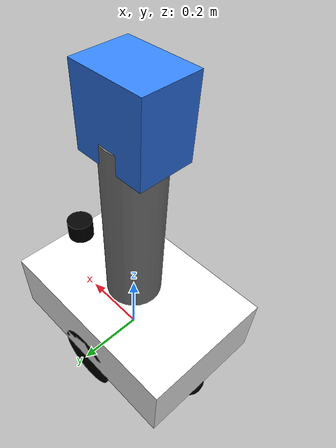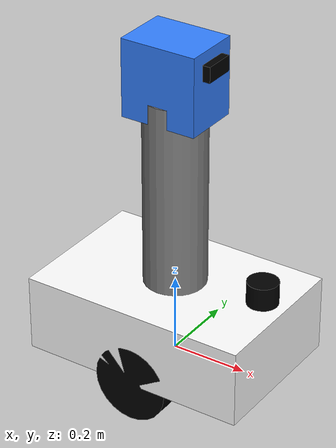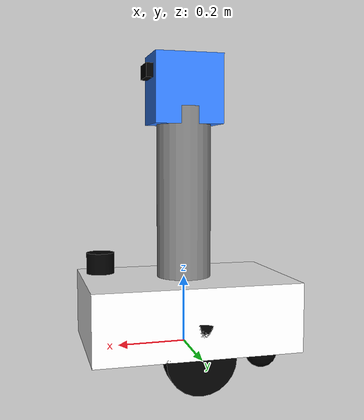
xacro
<?xml version="1.0"?>
<robot name="reception_bot" xmlns:xacro="http://www.ros.org/wiki/xacro">

  <!-- ===================== PROPERTIES ===================== -->
  <xacro:property name="base_mass"   value="5.0"/>
  <xacro:property name="base_length" value="0.6"/>
  <xacro:property name="base_width"  value="0.4"/>
  <xacro:property name="base_height" value="0.2"/>
  <xacro:property name="wheel_radius" value="0.1"/>
  <xacro:property name="wheel_width"  value="0.05"/>
  <xacro:property name="wheel_mass"   value="0.5"/>
  <xacro:property name="track_width"  value="0.35"/>
  <xacro:property name="caster_wheel_radius" value="0.05"/>

  <!-- ===================== MATERIALS ===================== -->
  <material name="white">  <color rgba="1 1 1 1"/>    </material>
  <material name="black">  <color rgba="0 0 0 1"/>    </material>
  <material name="blue">   <color rgba="0.2 0.5 1 1"/></material>
  <material name="gray">   <color rgba="0.5 0.5 0.5 1"/></material>

  <!-- ===================== MACROS ===================== -->
  <xacro:macro name="box_inertia" params="m w h d">
    <inertial>
      <mass value="${m}"/>
      <inertia ixx="${m*(h*h+d*d)/12}" ixy="0" ixz="0"
               iyy="${m*(w*w+d*d)/12}" iyz="0"
               izz="${m*(w*w+h*h)/12}"/>
    </inertial>
  </xacro:macro>

  <xacro:macro name="cylinder_inertia" params="m r h">
    <inertial>
      <mass value="${m}"/>
      <inertia ixx="${m*(3*r*r+h*h)/12}" ixy="0" ixz="0"
               iyy="${m*(3*r*r+h*h)/12}" iyz="0"
               izz="${m*r*r/2}"/>
    </inertial>
  </xacro:macro>

  <!-- ===================== BASE LINK ===================== -->
  <link name="base_footprint"/>

  <joint name="base_footprint_joint" type="fixed">
    <parent link="base_footprint"/>
    <child  link="base_link"/>
    <origin xyz="0 0 ${wheel_radius}" rpy="0 0 0"/>
  </joint>

  <link name="base_link">
    <visual>
      <geometry><box size="${base_length} ${base_width} ${base_height}"/></geometry>
      <material name="white"/>
    </visual>
    <collision>
      <geometry><box size="${base_length} ${base_width} ${base_height}"/></geometry>
    </collision>
    <xacro:box_inertia m="${base_mass}" w="${base_width}" h="${base_height}" d="${base_length}"/>
  </link>

  <!-- =================== TORSO / POLE =================== -->
  <joint name="torso_joint" type="fixed">
    <parent link="base_link"/>
    <child  link="torso_link"/>
    <origin xyz="0 0 ${base_height/2 + 0.25}" rpy="0 0 0"/>
  </joint>
  <link name="torso_link">
    <visual>
      <geometry><cylinder radius="0.08" length="0.5"/></geometry>
      <material name="gray"/>
    </visual>
    <collision>
      <geometry><cylinder radius="0.08" length="0.5"/></geometry>
    </collision>
    <xacro:cylinder_inertia m="2.0" r="0.08" h="0.5"/>
  </link>

  <!-- =================== HEAD =================== -->
  <joint name="head_joint" type="fixed">
    <parent link="torso_link"/>
    <child  link="head_link"/>
    <origin xyz="0 0 0.3" rpy="0 0 0"/>
  </joint>
  <link name="head_link">
    <visual>
      <geometry><box size="0.2 0.15 0.2"/></geometry>
      <material name="blue"/>
    </visual>
    <collision>
      <geometry><box size="0.2 0.15 0.2"/></geometry>
    </collision>
    <xacro:box_inertia m="1.0" w="0.15" h="0.2" d="0.2"/>
  </link>

  <!-- =================== WHEEL MACRO =================== -->
  <xacro:macro name="wheel" params="prefix y_offset">
    <joint name="${prefix}_wheel_joint" type="continuous">
      <parent link="base_link"/>
      <child  link="${prefix}_wheel_link"/>
      <origin xyz="0 ${y_offset} ${-base_height/2}" rpy="${-pi/2} 0 0"/>
      <axis xyz="0 0 1"/>
    </joint>
    <link name="${prefix}_wheel_link">
      <visual>
        <geometry><cylinder radius="${wheel_radius}" length="${wheel_width}"/></geometry>
        <material name="black"/>
      </visual>
      <collision>
        <geometry><cylinder radius="${wheel_radius}" length="${wheel_width}"/></geometry>
      </collision>
      <xacro:cylinder_inertia m="${wheel_mass}" r="${wheel_radius}" h="${wheel_width}"/>
    </link>
  </xacro:macro>

  <xacro:wheel prefix="left"  y_offset="${track_width/2}"/>
  <xacro:wheel prefix="right" y_offset="${-track_width/2}"/>

  <!-- =================== CASTER WHEEL =================== -->
  <link name="caster_wheel">
  <inertial>
    <origin xyz="0 0 0" rpy="0 0 0"/>
    <mass value="0.2"/>
    <inertia ixx="0.00025" ixy="0" ixz="0"
             iyy="0.00025" iyz="0"
             izz="0.00025"/>
  </inertial>
  <visual>
    <geometry>
      <sphere radius="${caster_wheel_radius}"/>
    </geometry>
    <origin xyz="0 0 0" rpy="0 0 0"/>
    <material name="black"/>
  </visual>
  <collision>
    <geometry>
      <sphere radius="${caster_wheel_radius}"/>
    </geometry>
    <origin xyz="0 0 0" rpy="0 0 0"/>
  </collision>
  </link>

  <joint name="caster_wheel_joint" type="fixed">
  <parent link="base_link"/>
  <child link="caster_wheel"/>
  <origin xyz="${(-base_length/2) + caster_wheel_radius} 0 ${-base_height/2 + caster_wheel_radius - wheel_radius}" rpy="0 0 0"/>
  </joint>
  <!-- =================== LIDAR =================== -->
  <joint name="lidar_joint" type="fixed">
    <parent link="base_link"/>
    <child  link="lidar_link"/>
    <origin xyz="${base_length/2 - 0.05} 0 ${base_height/2 + 0.05}" rpy="0 0 0"/>
  </joint>
  <link name="lidar_link">
    <visual>
      <geometry><cylinder radius="0.04" length="0.06"/></geometry>
      <material name="black"/>
    </visual>
    <collision>
      <geometry><cylinder radius="0.04" length="0.06"/></geometry>
    </collision>
    <inertial>
      <mass value="0.1"/>
      <inertia ixx="0.0001" ixy="0" ixz="0" iyy="0.0001" iyz="0" izz="0.0001"/>
    </inertial>
  </link>

  <!-- =================== CAMERA =================== -->
  <joint name="camera_joint" type="fixed">
    <parent link="head_link"/>
    <child  link="camera_link"/>
    <origin xyz="0.1 0 0.05" rpy="0 0 0"/>
  </joint>
  <link name="camera_link">
    <visual>
      <geometry><box size="0.04 0.08 0.04"/></geometry>
      <material name="black"/>
    </visual>
    <collision>
      <geometry><box size="0.04 0.08 0.04"/></geometry>
    </collision>
    <inertial>
      <mass value="0.05"/>
      <inertia ixx="0.00001" ixy="0" ixz="0" iyy="0.00001" iyz="0" izz="0.00001"/>
    </inertial>
  </link>

  <!-- Optical frame (z-forward convention for camera) -->
  <joint name="camera_optical_joint" type="fixed">
    <parent link="camera_link"/>
    <child  link="camera_optical_link"/>
    <origin xyz="0 0 0" rpy="${-pi/2} 0 ${-pi/2}"/>
  </joint>
  <link name="camera_optical_link"/>

  <!-- =================== GAZEBO PLUGINS =================== -->

  <!-- Differential Drive Controller -->
  <gazebo>
    <plugin name="diff_drive" filename="libgazebo_ros_diff_drive.so">
      <ros>
        <namespace>/reception_bot</namespace>
        <remapping>cmd_vel:=cmd_vel</remapping>
        <remapping>odom:=odom</remapping>
      </ros>
      <left_joint>left_wheel_joint</left_joint>
      <right_joint>right_wheel_joint</right_joint>
      <wheel_separation>${track_width}</wheel_separation>
      <wheel_diameter>${2*wheel_radius}</wheel_diameter>
      <max_wheel_torque>20</max_wheel_torque>
      <max_wheel_acceleration>1.0</max_wheel_acceleration>
      <publish_odom>true</publish_odom>
      <publish_odom_tf>true</publish_odom_tf>
      <publish_wheel_tf>true</publish_wheel_tf>
      <odometry_frame>odom</odometry_frame>
      <robot_base_frame>base_footprint</robot_base_frame>
    </plugin>
  </gazebo>

  <!-- LiDAR Sensor Plugin -->
  <gazebo reference="lidar_link">
    <sensor name="lidar" type="ray">
      <always_on>true</always_on>
      <visualize>true</visualize>
      <update_rate>10</update_rate>
      <ray>
        <scan>
          <horizontal>
            <samples>360</samples>
            <resolution>1</resolution>
            <min_angle>-3.14159</min_angle>
            <max_angle>3.14159</max_angle>
          </horizontal>
        </scan>
        <range>
          <min>0.15</min>
          <max>12.0</max>
          <resolution>0.01</resolution>
        </range>
        <noise>
          <type>gaussian</type>
          <mean>0.0</mean>
          <stddev>0.01</stddev>
        </noise>
      </ray>
      <plugin name="lidar_plugin" filename="libgazebo_ros_ray_sensor.so">
        <ros>
          <namespace>/reception_bot</namespace>
          <remapping>~/out:=scan</remapping>
        </ros>
        <output_type>sensor_msgs/LaserScan</output_type>
        <frame_name>lidar_link</frame_name>
      </plugin>
    </sensor>
  </gazebo>

  <!-- Camera Sensor Plugin -->
  <gazebo reference="camera_link">
    <sensor name="camera" type="camera">
      <always_on>true</always_on>
      <visualize>true</visualize>
      <update_rate>30</update_rate>
      <camera>
        <horizontal_fov>1.3962634</horizontal_fov>
        <image>
          <width>640</width>
          <height>480</height>
          <format>R8G8B8</format>
        </image>
        <clip><near>0.02</near><far>300</far></clip>
        <noise>
          <type>gaussian</type>
          <mean>0.0</mean>
          <stddev>0.007</stddev>
        </noise>
      </camera>
      <plugin name="camera_plugin" filename="libgazebo_ros_camera.so">
        <ros>
          <namespace>/reception_bot</namespace>
        </ros>
        <camera_name>front_camera</camera_name>
        <frame_name>camera_optical_link</frame_name>
        <hack_baseline>0.07</hack_baseline>
      </plugin>
    </sensor>
  </gazebo>

  <!-- Caster friction fix -->
  <gazebo reference="caster_link">
    <mu1>0.0</mu1>
    <mu2>0.0</mu2>
  </gazebo>

  <!-- Caster friction zero rakho taaki freely rotate kare -->
<gazebo reference="caster_wheel">
  <mu1>0.0</mu1>
  <mu2>0.0</mu2>
  <kp>1000000.0</kp>
  <kd>100.0</kd>
</gazebo>

</robot>
